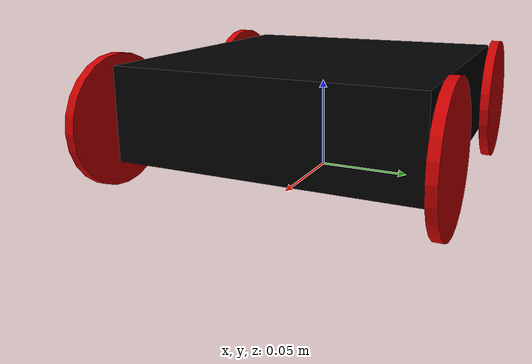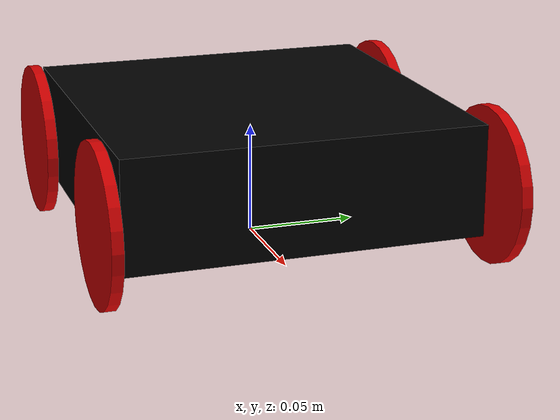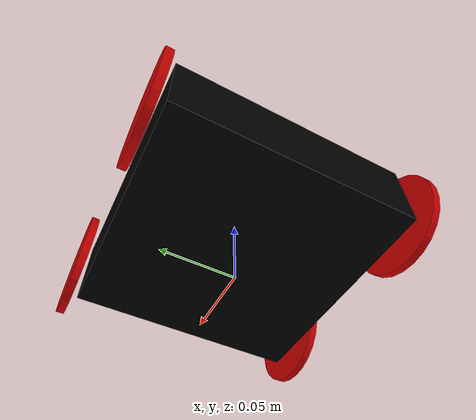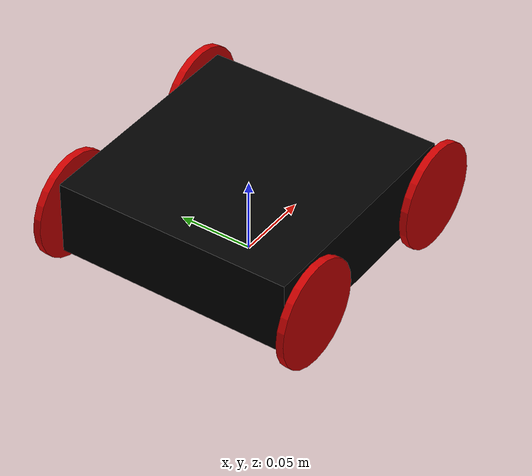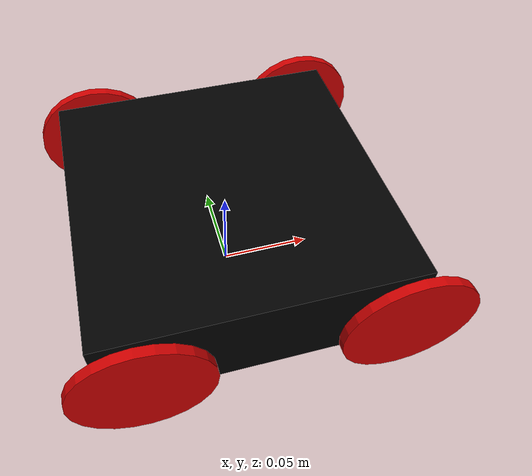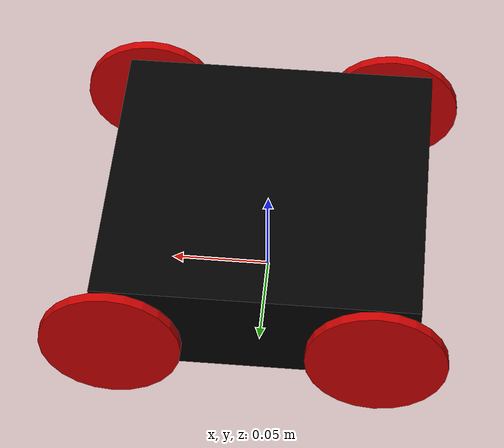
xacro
<?xml version="1.0"?>
<robot xmlns:xacro="http://www.ros.org/wiki/xacro" name="kbot">

  <xacro:property name="base_width" value="0.16"/>
  <xacro:property name="base_len" value="0.16"/>
  <xacro:property name="wheel_radius" value="0.035"/>
  <xacro:property name="base_wheel_gap" value="0.007"/>
  <xacro:property name="wheel_separation" value="0.15"/>
  <xacro:property name="wheel_joint_offset" value="0.02"/>

  <!--Color Properties-->
  <material name="blue">
    <color rgba="0 0 0.8 1"/>
  </material>
  <material name="black">
    <color rgba="0 0 0 1"/>
  </material>
  <material name="white">
    <color rgba="1 1 1 1"/>
  </material>
  <material name="red">
    <color rgba="0.8 0.0 0.0 1.0"/>
  </material>

  <!--Interial macros-->
  <xacro:macro name="cylinder_inertia" params="m r h">
    <inertial>
      <mass value="${m}"/>
      <inertia ixx="${m*(3*r*r+h*h)/12}" ixy = "0" ixz = "0" iyy="${m*(3*r*r+h*h)/12}" iyz = "0" izz="${m*r*r/2}"/>
    </inertial>
  </xacro:macro>

  <xacro:macro name="box_inertia" params="m w h d">
    <inertial>
      <mass value="${m}"/>
      <inertia ixx="${m / 12.0 * (d*d + h*h)}" ixy="0.0" ixz="0.0" iyy="${m / 12.0 * (w*w + h*h)}" iyz="0.0" izz="${m / 12.0 * (w*w + d*d)}"/>
    </inertial>
  </xacro:macro>

  <xacro:macro name="sphere_inertia" params="m r">
    <inertial>
      <mass value="${m}"/>
      <inertia ixx="${2.0*m*(r*r)/5.0}" ixy="0.0" ixz="0.0" iyy="${2.0*m*(r*r)/5.0}" iyz="0.0" izz="${2.0*m*(r*r)/5.0}"/>
    </inertial>
  </xacro:macro>

  <!--Base Footprint-->
  <link name="base_footprint">
    <visual>
        <origin xyz="0 0 0" rpy="0 0 0" />
        <geometry>
            <box size="0.001 0.001 0.001" />
        </geometry>
    </visual>
  </link>

  <!--Base link-->
  <link name="base_link">
    <xacro:box_inertia m="1" w="${base_len}" h="${base_width}" d="0.05"/>
    <visual>
      <geometry>
        <box size="${base_len} ${base_width} 0.05"/>
      </geometry>
      <material name="black"/>
    </visual>
    <collision>
      <geometry>
        <box size="${base_len} ${base_width} 0.05"/>
      </geometry>
    </collision>
  </link>

  <!--base_link to base_footprint Joint-->
  <joint name="base_link_joint" type="fixed">
    <origin xyz="0 0 ${wheel_radius + 0.005}" rpy="0 0 0" />
    <parent link="base_footprint"/>
    <child link="base_link" />
  </joint>

  <!--Wheel link & joint macro-->
  <xacro:macro name="wheel" params="prefix reflect forward">
    <link name="${prefix}_wheel">
      <visual>
        <origin xyz="0 0 0" rpy="${pi/2} 0 0"/>
        <geometry>
          <cylinder radius="${wheel_radius}" length="0.005"/>
        </geometry>
        <material name="red"/>
      </visual>
      <collision>
        <origin xyz="0 0 0" rpy="${pi/2} 0 0"/>
        <geometry>
          <cylinder radius="${wheel_radius}" length="0.005"/>
        </geometry>
      </collision>
      <xacro:cylinder_inertia m="1" r="${wheel_radius}" h="0.005"/>
    </link>

    <joint name="${prefix}_wheel_joint" type="continuous">
      <axis xyz="0 0 1" rpy="0 0 0" />
      <parent link="base_link"/>
      <child link="${prefix}_wheel"/>
      <origin xyz="${wheel_joint_offset+forward} ${((base_width/2)+base_wheel_gap)*reflect} -0.005" rpy="0 0 0"/>
    </joint>
  </xacro:macro>

  <!--Create Left & Right Wheel links/joints-->
  <xacro:wheel prefix="left_back" reflect="1" forward="0.05"/>
  <xacro:wheel prefix="right_back" reflect="-1" forward="0.05"/>
  <xacro:wheel prefix="left_front" reflect="1" forward="-0.08"/>
  <xacro:wheel prefix="right_front" reflect="-1" forward="-0.08"/>
</robot>
